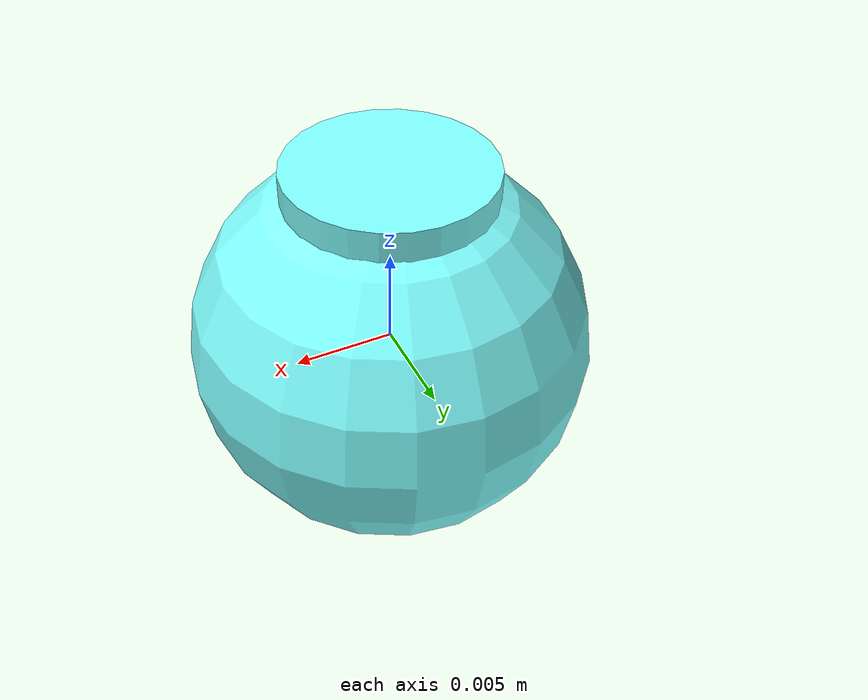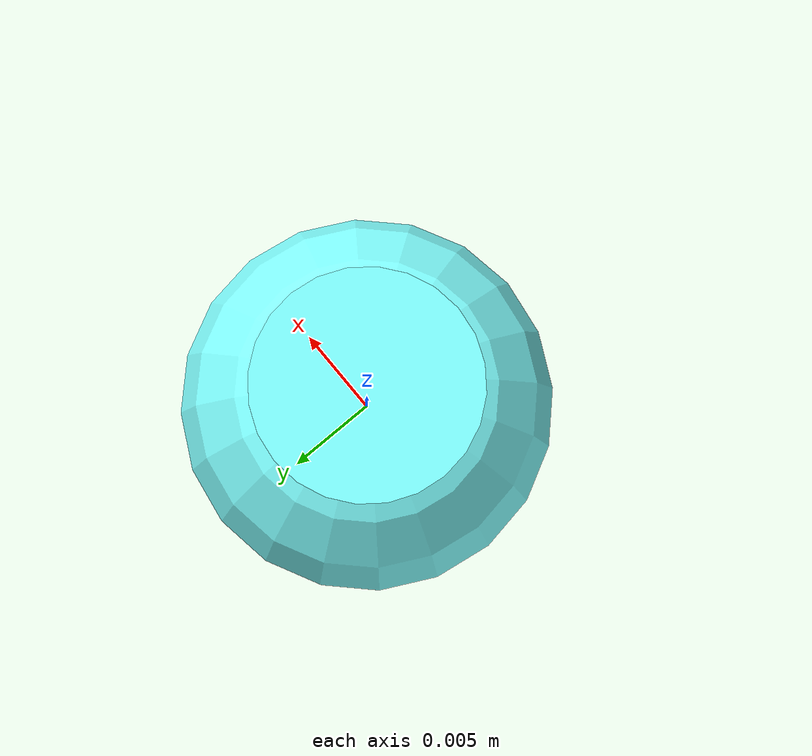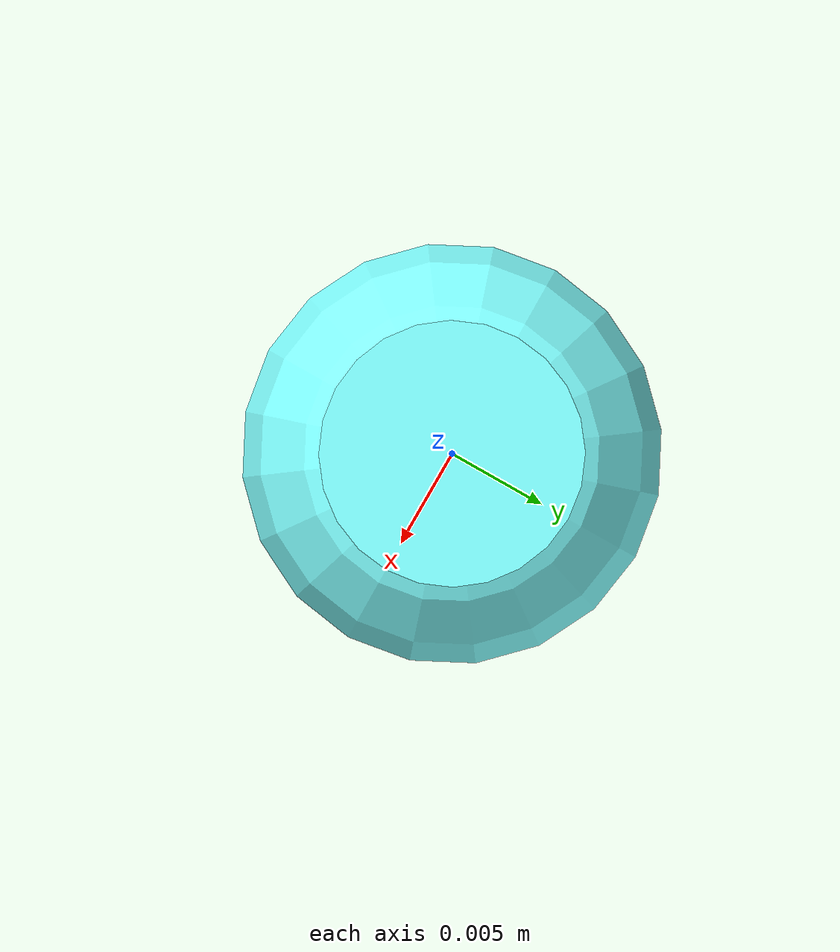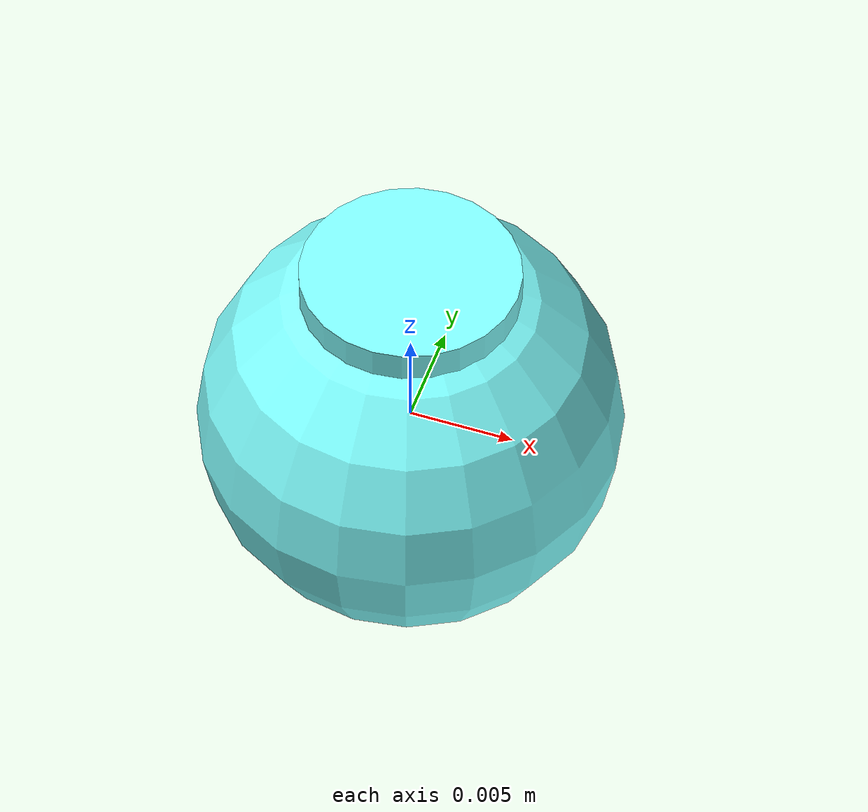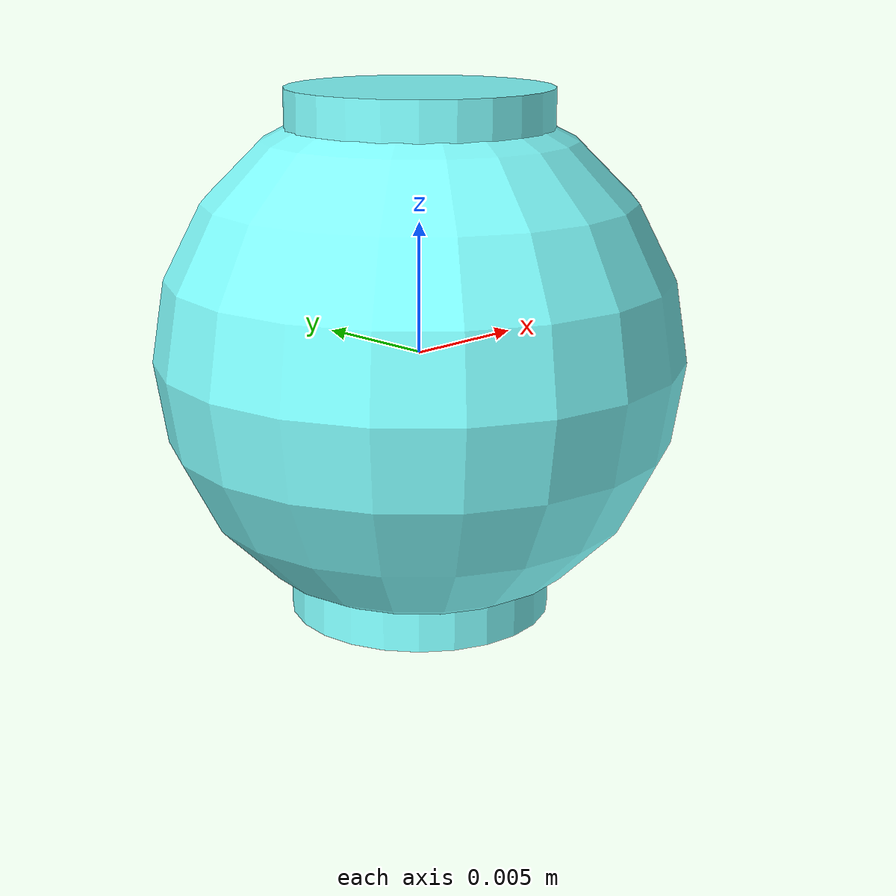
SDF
<?xml version="1.0" ?>
<sdf version="1.5">
  <world name="default">
    <!-- A global light source -->
    <include>
      <uri>model://sun</uri>
    </include>
    <gravity>0 0 0</gravity>
    <model name="EndEffectorSphere">
       <pose>0 0 0 0 0 0</pose>
       <link name="link">
          <visual name="visual">
             <transparency>0.0</transparency>
             <geometry>
                <sphere>
                   <radius>0.01</radius>
                </sphere>
             </geometry>
             <material>
                <ambient>0.5 1 1 1</ambient>
                <diffuse>0.5 1 1 1</diffuse>
                <specular>0.1 0.1 0.1 1</specular>
                <emissive>0 0 0 0</emissive>
             </material>
          </visual>
       </link>
    </model>
    <model name="targetCylinder">
       <pose>0 0 0 0 0 0</pose>
       <link name="cylinder_link">
          <visual name="visual">
             <transparency>0.0</transparency>
             <geometry>
                <cylinder>
                   <radius>0.005</radius>
                   <length>0.02</length>
                </cylinder>
             </geometry>
             <material>
                <ambient>0.5 1 1 1</ambient>
                <diffuse>0.5 1 1 1</diffuse>
                <specular>0.1 0.1 0.1 1</specular>
                <emissive>0 0 0 0</emissive>
             </material>
          </visual>
       </link>
      </model>
  </world>
</sdf>
